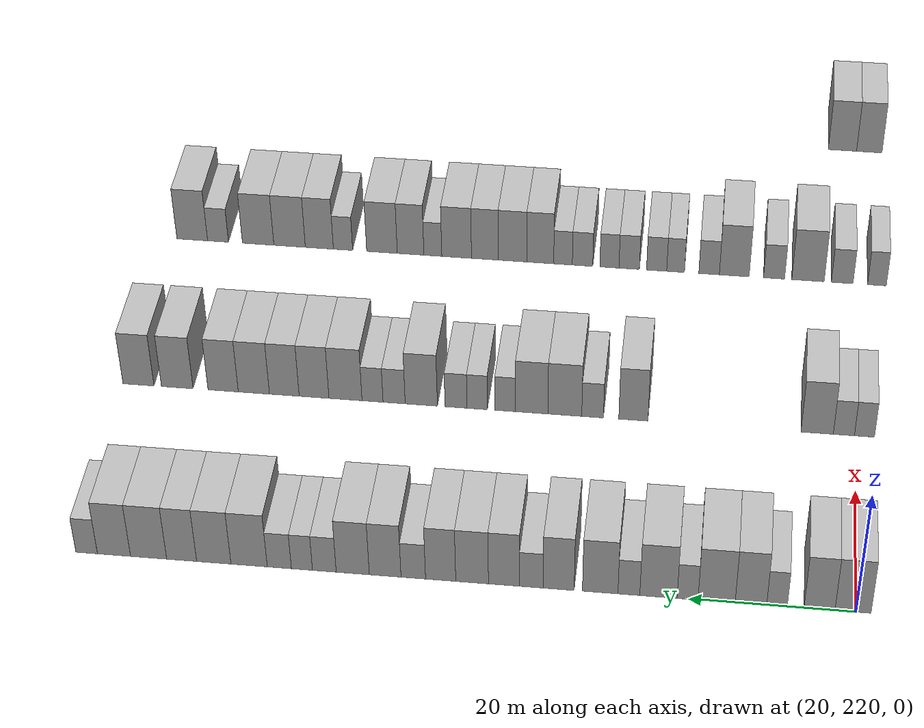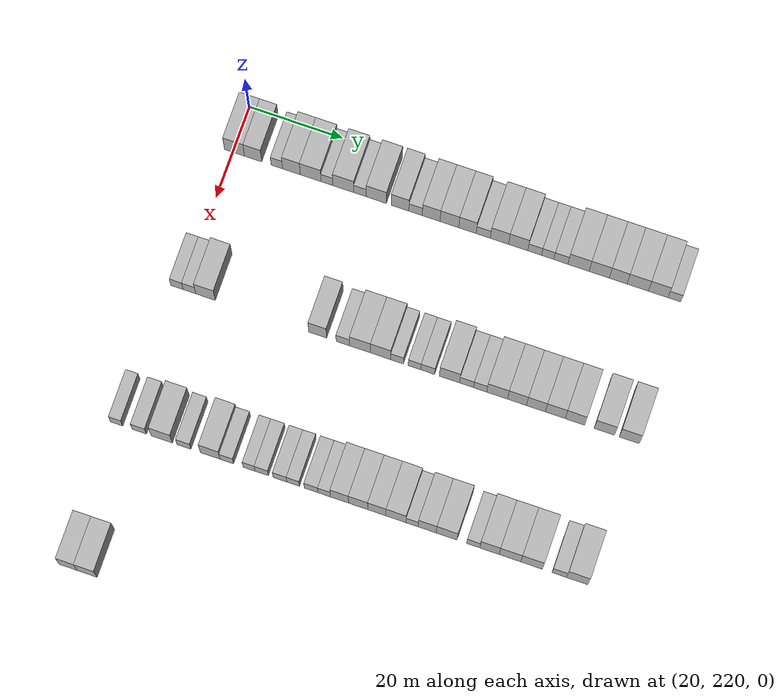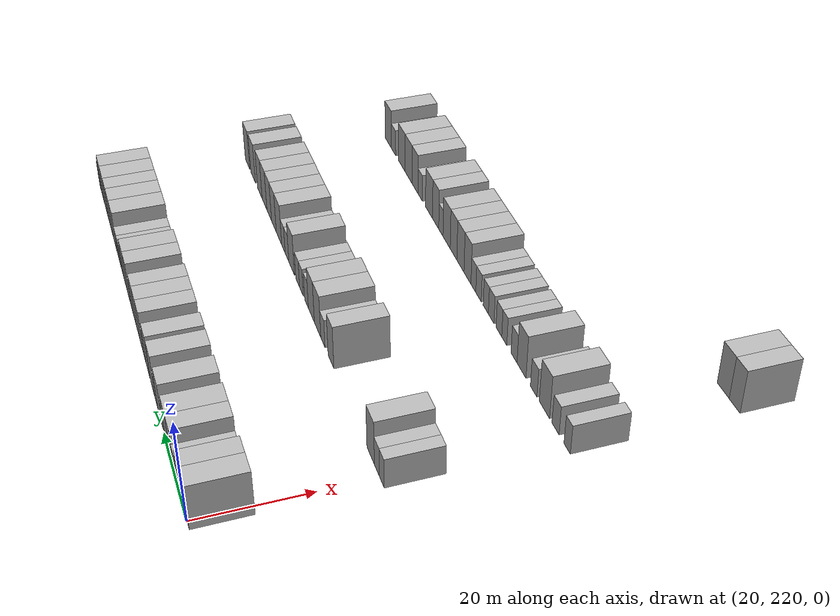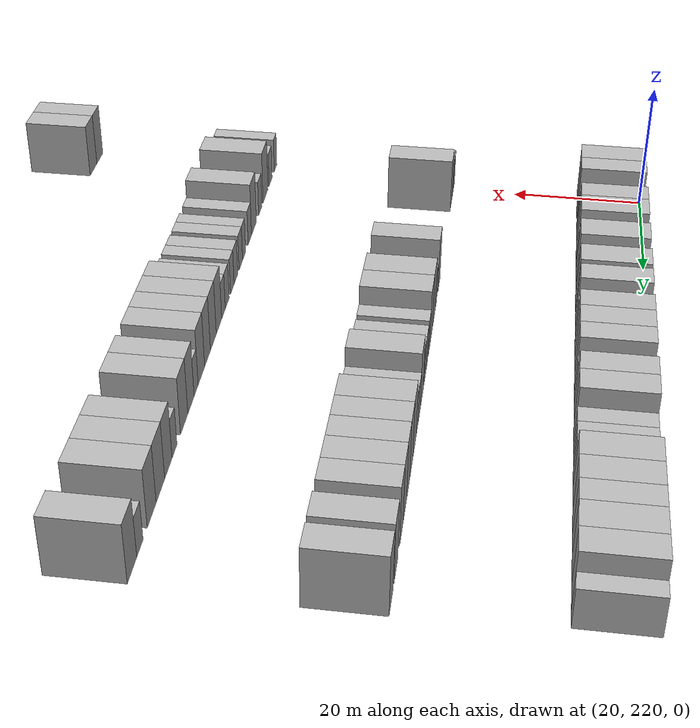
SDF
<sdf version="1.6">
 <world name="default">
  <model name="building_171">
   <static>1</static>
   <pose>25.0000 220.3813 0 0.000000 0.000000 0.000000</pose>
   <link name="link">
    <pose>0 0 4.50 0 0 0</pose>
    <collision name="collision"><geometry><box><size>10.0000 4.2788 9.0000</size></box></geometry></collision>
    <visual name="visual">
     <cast_shadows>0</cast_shadows>
     <geometry><box><size>10.0000 4.2788 9.0000</size></box></geometry>
     <material>
      <script>
       <uri>model://HANNAS_wall/materials/scripts</uri>
       <uri>model://HANNAS_wall/materials/textures</uri>
       <name>vrc/HANNAS_wall</name>
      </script>
     </material>
    </visual>
   </link>
  </model>
  <model name="building_172">
   <static>1</static>
   <pose>25.0000 224.3634 0 0.000000 0.000000 0.000000</pose>
   <link name="link">
    <pose>0 0 4.50 0 0 0</pose>
    <collision name="collision"><geometry><box><size>10.0000 3.6854 9.0000</size></box></geometry></collision>
    <visual name="visual">
     <cast_shadows>0</cast_shadows>
     <geometry><box><size>10.0000 3.6854 9.0000</size></box></geometry>
     <material>
      <script>
       <uri>model://HANNAS_wall/materials/scripts</uri>
       <uri>model://HANNAS_wall/materials/textures</uri>
       <name>vrc/HANNAS_wall</name>
      </script>
     </material>
    </visual>
   </link>
  </model>
  <model name="building_173">
   <static>1</static>
   <pose>25.0000 229.4312 0 0.000000 0.000000 0.000000</pose>
   <link name="link">
    <pose>0 0 3.00 0 0 0</pose>
    <collision name="collision"><geometry><box><size>10.0000 2.4502 6.0000</size></box></geometry></collision>
    <visual name="visual">
     <cast_shadows>0</cast_shadows>
     <geometry><box><size>10.0000 2.4502 6.0000</size></box></geometry>
     <material>
      <script>
       <uri>model://HANNAS_wall/materials/scripts</uri>
       <uri>model://HANNAS_wall/materials/textures</uri>
       <name>vrc/HANNAS_wall</name>
      </script>
     </material>
    </visual>
   </link>
  </model>
  <model name="building_174">
   <static>1</static>
   <pose>25.0000 232.5444 0 0.000000 0.000000 0.000000</pose>
   <link name="link">
    <pose>0 0 4.50 0 0 0</pose>
    <collision name="collision"><geometry><box><size>10.0000 3.7763 9.0000</size></box></geometry></collision>
    <visual name="visual">
     <cast_shadows>0</cast_shadows>
     <geometry><box><size>10.0000 3.7763 9.0000</size></box></geometry>
     <material>
      <script>
       <uri>model://HANNAS_wall/materials/scripts</uri>
       <uri>model://HANNAS_wall/materials/textures</uri>
       <name>vrc/HANNAS_wall</name>
      </script>
     </material>
    </visual>
   </link>
  </model>
  <model name="building_175">
   <static>1</static>
   <pose>25.0000 236.6588 0 0.000000 0.000000 0.000000</pose>
   <link name="link">
    <pose>0 0 4.50 0 0 0</pose>
    <collision name="collision"><geometry><box><size>10.0000 4.4524 9.0000</size></box></geometry></collision>
    <visual name="visual">
     <cast_shadows>0</cast_shadows>
     <geometry><box><size>10.0000 4.4524 9.0000</size></box></geometry>
     <material>
      <script>
       <uri>model://HANNAS_wall/materials/scripts</uri>
       <uri>model://HANNAS_wall/materials/textures</uri>
       <name>vrc/HANNAS_wall</name>
      </script>
     </material>
    </visual>
   </link>
  </model>
  <model name="building_176">
   <static>1</static>
   <pose>25.0000 240.1410 0 0.000000 0.000000 0.000000</pose>
   <link name="link">
    <pose>0 0 3.00 0 0 0</pose>
    <collision name="collision"><geometry><box><size>10.0000 2.5120 6.0000</size></box></geometry></collision>
    <visual name="visual">
     <cast_shadows>0</cast_shadows>
     <geometry><box><size>10.0000 2.5120 6.0000</size></box></geometry>
     <material>
      <script>
       <uri>model://HANNAS_wall/materials/scripts</uri>
       <uri>model://HANNAS_wall/materials/textures</uri>
       <name>vrc/HANNAS_wall</name>
      </script>
     </material>
    </visual>
   </link>
  </model>
  <model name="building_177">
   <static>1</static>
   <pose>25.0000 243.6367 0 0.000000 0.000000 0.000000</pose>
   <link name="link">
    <pose>0 0 4.50 0 0 0</pose>
    <collision name="collision"><geometry><box><size>10.0000 4.4793 9.0000</size></box></geometry></collision>
    <visual name="visual">
     <cast_shadows>0</cast_shadows>
     <geometry><box><size>10.0000 4.4793 9.0000</size></box></geometry>
     <material>
      <script>
       <uri>model://HANNAS_wall/materials/scripts</uri>
       <uri>model://HANNAS_wall/materials/textures</uri>
       <name>vrc/HANNAS_wall</name>
      </script>
     </material>
    </visual>
   </link>
  </model>
  <model name="building_178">
   <static>1</static>
   <pose>25.0000 247.1962 0 0.000000 0.000000 0.000000</pose>
   <link name="link">
    <pose>0 0 3.00 0 0 0</pose>
    <collision name="collision"><geometry><box><size>10.0000 2.6397 6.0000</size></box></geometry></collision>
    <visual name="visual">
     <cast_shadows>0</cast_shadows>
     <geometry><box><size>10.0000 2.6397 6.0000</size></box></geometry>
     <material>
      <script>
       <uri>model://HANNAS_wall/materials/scripts</uri>
       <uri>model://HANNAS_wall/materials/textures</uri>
       <name>vrc/HANNAS_wall</name>
      </script>
     </material>
    </visual>
   </link>
  </model>
  <model name="building_179">
   <static>1</static>
   <pose>25.0000 250.6557 0 0.000000 0.000000 0.000000</pose>
   <link name="link">
    <pose>0 0 4.50 0 0 0</pose>
    <collision name="collision"><geometry><box><size>10.0000 4.2793 9.0000</size></box></geometry></collision>
    <visual name="visual">
     <cast_shadows>0</cast_shadows>
     <geometry><box><size>10.0000 4.2793 9.0000</size></box></geometry>
     <material>
      <script>
       <uri>model://HANNAS_wall/materials/scripts</uri>
       <uri>model://HANNAS_wall/materials/textures</uri>
       <name>vrc/HANNAS_wall</name>
      </script>
     </material>
    </visual>
   </link>
  </model>
  <model name="building_180">
   <static>1</static>
   <pose>25.0000 255.6756 0 0.000000 0.000000 0.000000</pose>
   <link name="link">
    <pose>0 0 4.50 0 0 0</pose>
    <collision name="collision"><geometry><box><size>10.0000 3.7605 9.0000</size></box></geometry></collision>
    <visual name="visual">
     <cast_shadows>0</cast_shadows>
     <geometry><box><size>10.0000 3.7605 9.0000</size></box></geometry>
     <material>
      <script>
       <uri>model://HANNAS_wall/materials/scripts</uri>
       <uri>model://HANNAS_wall/materials/textures</uri>
       <name>vrc/HANNAS_wall</name>
      </script>
     </material>
    </visual>
   </link>
  </model>
  <model name="building_181">
   <static>1</static>
   <pose>25.0000 258.9836 0 0.000000 0.000000 0.000000</pose>
   <link name="link">
    <pose>0 0 3.00 0 0 0</pose>
    <collision name="collision"><geometry><box><size>10.0000 2.8555 6.0000</size></box></geometry></collision>
    <visual name="visual">
     <cast_shadows>0</cast_shadows>
     <geometry><box><size>10.0000 2.8555 6.0000</size></box></geometry>
     <material>
      <script>
       <uri>model://HANNAS_wall/materials/scripts</uri>
       <uri>model://HANNAS_wall/materials/textures</uri>
       <name>vrc/HANNAS_wall</name>
      </script>
     </material>
    </visual>
   </link>
  </model>
  <model name="building_182">
   <static>1</static>
   <pose>25.0000 262.2983 0 0.000000 0.000000 0.000000</pose>
   <link name="link">
    <pose>0 0 4.50 0 0 0</pose>
    <collision name="collision"><geometry><box><size>10.0000 3.7739 9.0000</size></box></geometry></collision>
    <visual name="visual">
     <cast_shadows>0</cast_shadows>
     <geometry><box><size>10.0000 3.7739 9.0000</size></box></geometry>
     <material>
      <script>
       <uri>model://HANNAS_wall/materials/scripts</uri>
       <uri>model://HANNAS_wall/materials/textures</uri>
       <name>vrc/HANNAS_wall</name>
      </script>
     </material>
    </visual>
   </link>
  </model>
  <model name="building_183">
   <static>1</static>
   <pose>25.0000 266.1753 0 0.000000 0.000000 0.000000</pose>
   <link name="link">
    <pose>0 0 4.50 0 0 0</pose>
    <collision name="collision"><geometry><box><size>10.0000 3.9802 9.0000</size></box></geometry></collision>
    <visual name="visual">
     <cast_shadows>0</cast_shadows>
     <geometry><box><size>10.0000 3.9802 9.0000</size></box></geometry>
     <material>
      <script>
       <uri>model://HANNAS_wall/materials/scripts</uri>
       <uri>model://HANNAS_wall/materials/textures</uri>
       <name>vrc/HANNAS_wall</name>
      </script>
     </material>
    </visual>
   </link>
  </model>
  <model name="building_184">
   <static>1</static>
   <pose>25.0000 270.0059 0 0.000000 0.000000 0.000000</pose>
   <link name="link">
    <pose>0 0 4.50 0 0 0</pose>
    <collision name="collision"><geometry><box><size>10.0000 3.6809 9.0000</size></box></geometry></collision>
    <visual name="visual">
     <cast_shadows>0</cast_shadows>
     <geometry><box><size>10.0000 3.6809 9.0000</size></box></geometry>
     <material>
      <script>
       <uri>model://HANNAS_wall/materials/scripts</uri>
       <uri>model://HANNAS_wall/materials/textures</uri>
       <name>vrc/HANNAS_wall</name>
      </script>
     </material>
    </visual>
   </link>
  </model>
  <model name="building_185">
   <static>1</static>
   <pose>25.0000 273.3457 0 0.000000 0.000000 0.000000</pose>
   <link name="link">
    <pose>0 0 3.00 0 0 0</pose>
    <collision name="collision"><geometry><box><size>10.0000 2.9987 6.0000</size></box></geometry></collision>
    <visual name="visual">
     <cast_shadows>0</cast_shadows>
     <geometry><box><size>10.0000 2.9987 6.0000</size></box></geometry>
     <material>
      <script>
       <uri>model://HANNAS_wall/materials/scripts</uri>
       <uri>model://HANNAS_wall/materials/textures</uri>
       <name>vrc/HANNAS_wall</name>
      </script>
     </material>
    </visual>
   </link>
  </model>
  <model name="building_186">
   <static>1</static>
   <pose>25.0000 276.7845 0 0.000000 0.000000 0.000000</pose>
   <link name="link">
    <pose>0 0 4.50 0 0 0</pose>
    <collision name="collision"><geometry><box><size>10.0000 3.8788 9.0000</size></box></geometry></collision>
    <visual name="visual">
     <cast_shadows>0</cast_shadows>
     <geometry><box><size>10.0000 3.8788 9.0000</size></box></geometry>
     <material>
      <script>
       <uri>model://HANNAS_wall/materials/scripts</uri>
       <uri>model://HANNAS_wall/materials/textures</uri>
       <name>vrc/HANNAS_wall</name>
      </script>
     </material>
    </visual>
   </link>
  </model>
  <model name="building_187">
   <static>1</static>
   <pose>25.0000 280.7556 0 0.000000 0.000000 0.000000</pose>
   <link name="link">
    <pose>0 0 4.50 0 0 0</pose>
    <collision name="collision"><geometry><box><size>10.0000 4.0634 9.0000</size></box></geometry></collision>
    <visual name="visual">
     <cast_shadows>0</cast_shadows>
     <geometry><box><size>10.0000 4.0634 9.0000</size></box></geometry>
     <material>
      <script>
       <uri>model://HANNAS_wall/materials/scripts</uri>
       <uri>model://HANNAS_wall/materials/textures</uri>
       <name>vrc/HANNAS_wall</name>
      </script>
     </material>
    </visual>
   </link>
  </model>
  <model name="building_188">
   <static>1</static>
   <pose>25.0000 284.2451 0 0.000000 0.000000 0.000000</pose>
   <link name="link">
    <pose>0 0 3.00 0 0 0</pose>
    <collision name="collision"><geometry><box><size>10.0000 2.9156 6.0000</size></box></geometry></collision>
    <visual name="visual">
     <cast_shadows>0</cast_shadows>
     <geometry><box><size>10.0000 2.9156 6.0000</size></box></geometry>
     <material>
      <script>
       <uri>model://HANNAS_wall/materials/scripts</uri>
       <uri>model://HANNAS_wall/materials/textures</uri>
       <name>vrc/HANNAS_wall</name>
      </script>
     </material>
    </visual>
   </link>
  </model>
  <model name="building_189">
   <static>1</static>
   <pose>25.0000 287.0000 0 0.000000 0.000000 0.000000</pose>
   <link name="link">
    <pose>0 0 3.00 0 0 0</pose>
    <collision name="collision"><geometry><box><size>10.0000 2.5942 6.0000</size></box></geometry></collision>
    <visual name="visual">
     <cast_shadows>0</cast_shadows>
     <geometry><box><size>10.0000 2.5942 6.0000</size></box></geometry>
     <material>
      <script>
       <uri>model://HANNAS_wall/materials/scripts</uri>
       <uri>model://HANNAS_wall/materials/textures</uri>
       <name>vrc/HANNAS_wall</name>
      </script>
     </material>
    </visual>
   </link>
  </model>
  <model name="building_190">
   <static>1</static>
   <pose>25.0000 289.7830 0 0.000000 0.000000 0.000000</pose>
   <link name="link">
    <pose>0 0 3.00 0 0 0</pose>
    <collision name="collision"><geometry><box><size>10.0000 2.9718 6.0000</size></box></geometry></collision>
    <visual name="visual">
     <cast_shadows>0</cast_shadows>
     <geometry><box><size>10.0000 2.9718 6.0000</size></box></geometry>
     <material>
      <script>
       <uri>model://HANNAS_wall/materials/scripts</uri>
       <uri>model://HANNAS_wall/materials/textures</uri>
       <name>vrc/HANNAS_wall</name>
      </script>
     </material>
    </visual>
   </link>
  </model>
  <model name="building_191">
   <static>1</static>
   <pose>25.0000 293.5099 0 0.000000 0.000000 0.000000</pose>
   <link name="link">
    <pose>0 0 4.50 0 0 0</pose>
    <collision name="collision"><geometry><box><size>10.0000 4.4820 9.0000</size></box></geometry></collision>
    <visual name="visual">
     <cast_shadows>0</cast_shadows>
     <geometry><box><size>10.0000 4.4820 9.0000</size></box></geometry>
     <material>
      <script>
       <uri>model://HANNAS_wall/materials/scripts</uri>
       <uri>model://HANNAS_wall/materials/textures</uri>
       <name>vrc/HANNAS_wall</name>
      </script>
     </material>
    </visual>
   </link>
  </model>
  <model name="building_192">
   <static>1</static>
   <pose>25.0000 297.8731 0 0.000000 0.000000 0.000000</pose>
   <link name="link">
    <pose>0 0 4.50 0 0 0</pose>
    <collision name="collision"><geometry><box><size>10.0000 4.2445 9.0000</size></box></geometry></collision>
    <visual name="visual">
     <cast_shadows>0</cast_shadows>
     <geometry><box><size>10.0000 4.2445 9.0000</size></box></geometry>
     <material>
      <script>
       <uri>model://HANNAS_wall/materials/scripts</uri>
       <uri>model://HANNAS_wall/materials/textures</uri>
       <name>vrc/HANNAS_wall</name>
      </script>
     </material>
    </visual>
   </link>
  </model>
  <model name="building_193">
   <static>1</static>
   <pose>25.0000 301.8572 0 0.000000 0.000000 0.000000</pose>
   <link name="link">
    <pose>0 0 4.50 0 0 0</pose>
    <collision name="collision"><geometry><box><size>10.0000 3.7237 9.0000</size></box></geometry></collision>
    <visual name="visual">
     <cast_shadows>0</cast_shadows>
     <geometry><box><size>10.0000 3.7237 9.0000</size></box></geometry>
     <material>
      <script>
       <uri>model://HANNAS_wall/materials/scripts</uri>
       <uri>model://HANNAS_wall/materials/textures</uri>
       <name>vrc/HANNAS_wall</name>
      </script>
     </material>
    </visual>
   </link>
  </model>
  <model name="building_194">
   <static>1</static>
   <pose>25.0000 305.9641 0 0.000000 0.000000 0.000000</pose>
   <link name="link">
    <pose>0 0 4.50 0 0 0</pose>
    <collision name="collision"><geometry><box><size>10.0000 4.4899 9.0000</size></box></geometry></collision>
    <visual name="visual">
     <cast_shadows>0</cast_shadows>
     <geometry><box><size>10.0000 4.4899 9.0000</size></box></geometry>
     <material>
      <script>
       <uri>model://HANNAS_wall/materials/scripts</uri>
       <uri>model://HANNAS_wall/materials/textures</uri>
       <name>vrc/HANNAS_wall</name>
      </script>
     </material>
    </visual>
   </link>
  </model>
  <model name="building_195">
   <static>1</static>
   <pose>25.0000 310.2711 0 0.000000 0.000000 0.000000</pose>
   <link name="link">
    <pose>0 0 4.50 0 0 0</pose>
    <collision name="collision"><geometry><box><size>10.0000 4.1242 9.0000</size></box></geometry></collision>
    <visual name="visual">
     <cast_shadows>0</cast_shadows>
     <geometry><box><size>10.0000 4.1242 9.0000</size></box></geometry>
     <material>
      <script>
       <uri>model://HANNAS_wall/materials/scripts</uri>
       <uri>model://HANNAS_wall/materials/textures</uri>
       <name>vrc/HANNAS_wall</name>
      </script>
     </material>
    </visual>
   </link>
  </model>
  <model name="building_196">
   <static>1</static>
   <pose>25.0000 313.6784 0 0.000000 0.000000 0.000000</pose>
   <link name="link">
    <pose>0 0 3.00 0 0 0</pose>
    <collision name="collision"><geometry><box><size>10.0000 2.6902 6.0000</size></box></geometry></collision>
    <visual name="visual">
     <cast_shadows>0</cast_shadows>
     <geometry><box><size>10.0000 2.6902 6.0000</size></box></geometry>
     <material>
      <script>
       <uri>model://HANNAS_wall/materials/scripts</uri>
       <uri>model://HANNAS_wall/materials/textures</uri>
       <name>vrc/HANNAS_wall</name>
      </script>
     </material>
    </visual>
   </link>
  </model>
  <model name="building_410">
   <static>1</static>
   <pose>55.0000 218.8072 0 0.000000 0.000000 0.000000</pose>
   <link name="link">
    <pose>0 0 3.00 0 0 0</pose>
    <collision name="collision"><geometry><box><size>10.0000 2.5646 6.0000</size></box></geometry></collision>
    <visual name="visual">
     <cast_shadows>0</cast_shadows>
     <geometry><box><size>10.0000 2.5646 6.0000</size></box></geometry>
     <material>
      <script>
       <uri>model://HANNAS_wall/materials/scripts</uri>
       <uri>model://HANNAS_wall/materials/textures</uri>
       <name>vrc/HANNAS_wall</name>
      </script>
     </material>
    </visual>
   </link>
  </model>
  <model name="building_411">
   <static>1</static>
   <pose>55.0000 221.4425 0 0.000000 0.000000 0.000000</pose>
   <link name="link">
    <pose>0 0 3.00 0 0 0</pose>
    <collision name="collision"><geometry><box><size>10.0000 2.7061 6.0000</size></box></geometry></collision>
    <visual name="visual">
     <cast_shadows>0</cast_shadows>
     <geometry><box><size>10.0000 2.7061 6.0000</size></box></geometry>
     <material>
      <script>
       <uri>model://HANNAS_wall/materials/scripts</uri>
       <uri>model://HANNAS_wall/materials/textures</uri>
       <name>vrc/HANNAS_wall</name>
      </script>
     </material>
    </visual>
   </link>
  </model>
  <model name="building_412">
   <static>1</static>
   <pose>55.0000 224.8716 0 0.000000 0.000000 0.000000</pose>
   <link name="link">
    <pose>0 0 4.50 0 0 0</pose>
    <collision name="collision"><geometry><box><size>10.0000 4.1520 9.0000</size></box></geometry></collision>
    <visual name="visual">
     <cast_shadows>0</cast_shadows>
     <geometry><box><size>10.0000 4.1520 9.0000</size></box></geometry>
     <material>
      <script>
       <uri>model://HANNAS_wall/materials/scripts</uri>
       <uri>model://HANNAS_wall/materials/textures</uri>
       <name>vrc/HANNAS_wall</name>
      </script>
     </material>
    </visual>
   </link>
  </model>
  <model name="building_413">
   <static>1</static>
   <pose>55.0000 248.6292 0 0.000000 0.000000 0.000000</pose>
   <link name="link">
    <pose>0 0 4.50 0 0 0</pose>
    <collision name="collision"><geometry><box><size>10.0000 3.7877 9.0000</size></box></geometry></collision>
    <visual name="visual">
     <cast_shadows>0</cast_shadows>
     <geometry><box><size>10.0000 3.7877 9.0000</size></box></geometry>
     <material>
      <script>
       <uri>model://HANNAS_wall/materials/scripts</uri>
       <uri>model://HANNAS_wall/materials/textures</uri>
       <name>vrc/HANNAS_wall</name>
      </script>
     </material>
    </visual>
   </link>
  </model>
  <model name="building_414">
   <static>1</static>
   <pose>55.0000 253.9353 0 0.000000 0.000000 0.000000</pose>
   <link name="link">
    <pose>0 0 3.00 0 0 0</pose>
    <collision name="collision"><geometry><box><size>10.0000 2.8244 6.0000</size></box></geometry></collision>
    <visual name="visual">
     <cast_shadows>0</cast_shadows>
     <geometry><box><size>10.0000 2.8244 6.0000</size></box></geometry>
     <material>
      <script>
       <uri>model://HANNAS_wall/materials/scripts</uri>
       <uri>model://HANNAS_wall/materials/textures</uri>
       <name>vrc/HANNAS_wall</name>
      </script>
     </material>
    </visual>
   </link>
  </model>
  <model name="building_415">
   <static>1</static>
   <pose>55.0000 257.5524 0 0.000000 0.000000 0.000000</pose>
   <link name="link">
    <pose>0 0 4.50 0 0 0</pose>
    <collision name="collision"><geometry><box><size>10.0000 4.4098 9.0000</size></box></geometry></collision>
    <visual name="visual">
     <cast_shadows>0</cast_shadows>
     <geometry><box><size>10.0000 4.4098 9.0000</size></box></geometry>
     <material>
      <script>
       <uri>model://HANNAS_wall/materials/scripts</uri>
       <uri>model://HANNAS_wall/materials/textures</uri>
       <name>vrc/HANNAS_wall</name>
      </script>
     </material>
    </visual>
   </link>
  </model>
  <model name="building_416">
   <static>1</static>
   <pose>55.0000 261.8807 0 0.000000 0.000000 0.000000</pose>
   <link name="link">
    <pose>0 0 4.50 0 0 0</pose>
    <collision name="collision"><geometry><box><size>10.0000 4.2467 9.0000</size></box></geometry></collision>
    <visual name="visual">
     <cast_shadows>0</cast_shadows>
     <geometry><box><size>10.0000 4.2467 9.0000</size></box></geometry>
     <material>
      <script>
       <uri>model://HANNAS_wall/materials/scripts</uri>
       <uri>model://HANNAS_wall/materials/textures</uri>
       <name>vrc/HANNAS_wall</name>
      </script>
     </material>
    </visual>
   </link>
  </model>
  <model name="building_417">
   <static>1</static>
   <pose>55.0000 265.3498 0 0.000000 0.000000 0.000000</pose>
   <link name="link">
    <pose>0 0 3.00 0 0 0</pose>
    <collision name="collision"><geometry><box><size>10.0000 2.6917 6.0000</size></box></geometry></collision>
    <visual name="visual">
     <cast_shadows>0</cast_shadows>
     <geometry><box><size>10.0000 2.6917 6.0000</size></box></geometry>
     <material>
      <script>
       <uri>model://HANNAS_wall/materials/scripts</uri>
       <uri>model://HANNAS_wall/materials/textures</uri>
       <name>vrc/HANNAS_wall</name>
      </script>
     </material>
    </visual>
   </link>
  </model>
  <model name="building_418">
   <static>1</static>
   <pose>55.0000 269.0288 0 0.000000 0.000000 0.000000</pose>
   <link name="link">
    <pose>0 0 3.00 0 0 0</pose>
    <collision name="collision"><geometry><box><size>10.0000 2.6662 6.0000</size></box></geometry></collision>
    <visual name="visual">
     <cast_shadows>0</cast_shadows>
     <geometry><box><size>10.0000 2.6662 6.0000</size></box></geometry>
     <material>
      <script>
       <uri>model://HANNAS_wall/materials/scripts</uri>
       <uri>model://HANNAS_wall/materials/textures</uri>
       <name>vrc/HANNAS_wall</name>
      </script>
     </material>
    </visual>
   </link>
  </model>
  <model name="building_419">
   <static>1</static>
   <pose>55.0000 271.8092 0 0.000000 0.000000 0.000000</pose>
   <link name="link">
    <pose>0 0 3.00 0 0 0</pose>
    <collision name="collision"><geometry><box><size>10.0000 2.8946 6.0000</size></box></geometry></collision>
    <visual name="visual">
     <cast_shadows>0</cast_shadows>
     <geometry><box><size>10.0000 2.8946 6.0000</size></box></geometry>
     <material>
      <script>
       <uri>model://HANNAS_wall/materials/scripts</uri>
       <uri>model://HANNAS_wall/materials/textures</uri>
       <name>vrc/HANNAS_wall</name>
      </script>
     </material>
    </visual>
   </link>
  </model>
  <model name="building_420">
   <static>1</static>
   <pose>55.0000 276.3805 0 0.000000 0.000000 0.000000</pose>
   <link name="link">
    <pose>0 0 4.50 0 0 0</pose>
    <collision name="collision"><geometry><box><size>10.0000 4.2480 9.0000</size></box></geometry></collision>
    <visual name="visual">
     <cast_shadows>0</cast_shadows>
     <geometry><box><size>10.0000 4.2480 9.0000</size></box></geometry>
     <material>
      <script>
       <uri>model://HANNAS_wall/materials/scripts</uri>
       <uri>model://HANNAS_wall/materials/textures</uri>
       <name>vrc/HANNAS_wall</name>
      </script>
     </material>
    </visual>
   </link>
  </model>
  <model name="building_421">
   <static>1</static>
   <pose>55.0000 279.9682 0 0.000000 0.000000 0.000000</pose>
   <link name="link">
    <pose>0 0 3.00 0 0 0</pose>
    <collision name="collision"><geometry><box><size>10.0000 2.9276 6.0000</size></box></geometry></collision>
    <visual name="visual">
     <cast_shadows>0</cast_shadows>
     <geometry><box><size>10.0000 2.9276 6.0000</size></box></geometry>
     <material>
      <script>
       <uri>model://HANNAS_wall/materials/scripts</uri>
       <uri>model://HANNAS_wall/materials/textures</uri>
       <name>vrc/HANNAS_wall</name>
      </script>
     </material>
    </visual>
   </link>
  </model>
  <model name="building_422">
   <static>1</static>
   <pose>55.0000 282.8209 0 0.000000 0.000000 0.000000</pose>
   <link name="link">
    <pose>0 0 3.00 0 0 0</pose>
    <collision name="collision"><geometry><box><size>10.0000 2.7777 6.0000</size></box></geometry></collision>
    <visual name="visual">
     <cast_shadows>0</cast_shadows>
     <geometry><box><size>10.0000 2.7777 6.0000</size></box></geometry>
     <material>
      <script>
       <uri>model://HANNAS_wall/materials/scripts</uri>
       <uri>model://HANNAS_wall/materials/textures</uri>
       <name>vrc/HANNAS_wall</name>
      </script>
     </material>
    </visual>
   </link>
  </model>
  <model name="building_423">
   <static>1</static>
   <pose>55.0000 286.3992 0 0.000000 0.000000 0.000000</pose>
   <link name="link">
    <pose>0 0 4.50 0 0 0</pose>
    <collision name="collision"><geometry><box><size>10.0000 4.3789 9.0000</size></box></geometry></collision>
    <visual name="visual">
     <cast_shadows>0</cast_shadows>
     <geometry><box><size>10.0000 4.3789 9.0000</size></box></geometry>
     <material>
      <script>
       <uri>model://HANNAS_wall/materials/scripts</uri>
       <uri>model://HANNAS_wall/materials/textures</uri>
       <name>vrc/HANNAS_wall</name>
      </script>
     </material>
    </visual>
   </link>
  </model>
  <model name="building_424">
   <static>1</static>
   <pose>55.0000 290.5668 0 0.000000 0.000000 0.000000</pose>
   <link name="link">
    <pose>0 0 4.50 0 0 0</pose>
    <collision name="collision"><geometry><box><size>10.0000 3.9563 9.0000</size></box></geometry></collision>
    <visual name="visual">
     <cast_shadows>0</cast_shadows>
     <geometry><box><size>10.0000 3.9563 9.0000</size></box></geometry>
     <material>
      <script>
       <uri>model://HANNAS_wall/materials/scripts</uri>
       <uri>model://HANNAS_wall/materials/textures</uri>
       <name>vrc/HANNAS_wall</name>
      </script>
     </material>
    </visual>
   </link>
  </model>
  <model name="building_425">
   <static>1</static>
   <pose>55.0000 294.5223 0 0.000000 0.000000 0.000000</pose>
   <link name="link">
    <pose>0 0 4.50 0 0 0</pose>
    <collision name="collision"><geometry><box><size>10.0000 3.9548 9.0000</size></box></geometry></collision>
    <visual name="visual">
     <cast_shadows>0</cast_shadows>
     <geometry><box><size>10.0000 3.9548 9.0000</size></box></geometry>
     <material>
      <script>
       <uri>model://HANNAS_wall/materials/scripts</uri>
       <uri>model://HANNAS_wall/materials/textures</uri>
       <name>vrc/HANNAS_wall</name>
      </script>
     </material>
    </visual>
   </link>
  </model>
  <model name="building_426">
   <static>1</static>
   <pose>55.0000 298.5744 0 0.000000 0.000000 0.000000</pose>
   <link name="link">
    <pose>0 0 4.50 0 0 0</pose>
    <collision name="collision"><geometry><box><size>10.0000 4.1494 9.0000</size></box></geometry></collision>
    <visual name="visual">
     <cast_shadows>0</cast_shadows>
     <geometry><box><size>10.0000 4.1494 9.0000</size></box></geometry>
     <material>
      <script>
       <uri>model://HANNAS_wall/materials/scripts</uri>
       <uri>model://HANNAS_wall/materials/textures</uri>
       <name>vrc/HANNAS_wall</name>
      </script>
     </material>
    </visual>
   </link>
  </model>
  <model name="building_427">
   <static>1</static>
   <pose>55.0000 302.6689 0 0.000000 0.000000 0.000000</pose>
   <link name="link">
    <pose>0 0 4.50 0 0 0</pose>
    <collision name="collision"><geometry><box><size>10.0000 4.0394 9.0000</size></box></geometry></collision>
    <visual name="visual">
     <cast_shadows>0</cast_shadows>
     <geometry><box><size>10.0000 4.0394 9.0000</size></box></geometry>
     <material>
      <script>
       <uri>model://HANNAS_wall/materials/scripts</uri>
       <uri>model://HANNAS_wall/materials/textures</uri>
       <name>vrc/HANNAS_wall</name>
      </script>
     </material>
    </visual>
   </link>
  </model>
  <model name="building_428">
   <static>1</static>
   <pose>55.0000 308.8072 0 0.000000 0.000000 0.000000</pose>
   <link name="link">
    <pose>0 0 4.50 0 0 0</pose>
    <collision name="collision"><geometry><box><size>10.0000 4.2372 9.0000</size></box></geometry></collision>
    <visual name="visual">
     <cast_shadows>0</cast_shadows>
     <geometry><box><size>10.0000 4.2372 9.0000</size></box></geometry>
     <material>
      <script>
       <uri>model://HANNAS_wall/materials/scripts</uri>
       <uri>model://HANNAS_wall/materials/textures</uri>
       <name>vrc/HANNAS_wall</name>
      </script>
     </material>
    </visual>
   </link>
  </model>
  <model name="building_429">
   <static>1</static>
   <pose>55.0000 314.0043 0 0.000000 0.000000 0.000000</pose>
   <link name="link">
    <pose>0 0 4.50 0 0 0</pose>
    <collision name="collision"><geometry><box><size>10.0000 4.1571 9.0000</size></box></geometry></collision>
    <visual name="visual">
     <cast_shadows>0</cast_shadows>
     <geometry><box><size>10.0000 4.1571 9.0000</size></box></geometry>
     <material>
      <script>
       <uri>model://HANNAS_wall/materials/scripts</uri>
       <uri>model://HANNAS_wall/materials/textures</uri>
       <name>vrc/HANNAS_wall</name>
      </script>
     </material>
    </visual>
   </link>
  </model>
  <model name="building_632">
   <static>1</static>
   <pose>85.0000 216.8720 0 0.000000 0.000000 0.000000</pose>
   <link name="link">
    <pose>0 0 3.00 0 0 0</pose>
    <collision name="collision"><geometry><box><size>10.0000 2.5731 6.0000</size></box></geometry></collision>
    <visual name="visual">
     <cast_shadows>0</cast_shadows>
     <geometry><box><size>10.0000 2.5731 6.0000</size></box></geometry>
     <material>
      <script>
       <uri>model://HANNAS_wall/materials/scripts</uri>
       <uri>model://HANNAS_wall/materials/textures</uri>
       <name>vrc/HANNAS_wall</name>
      </script>
     </material>
    </visual>
   </link>
  </model>
  <model name="building_633">
   <static>1</static>
   <pose>85.0000 221.6484 0 0.000000 0.000000 0.000000</pose>
   <link name="link">
    <pose>0 0 3.00 0 0 0</pose>
    <collision name="collision"><geometry><box><size>10.0000 2.9796 6.0000</size></box></geometry></collision>
    <visual name="visual">
     <cast_shadows>0</cast_shadows>
     <geometry><box><size>10.0000 2.9796 6.0000</size></box></geometry>
     <material>
      <script>
       <uri>model://HANNAS_wall/materials/scripts</uri>
       <uri>model://HANNAS_wall/materials/textures</uri>
       <name>vrc/HANNAS_wall</name>
      </script>
     </material>
    </visual>
   </link>
  </model>
  <model name="building_634">
   <static>1</static>
   <pose>85.0000 226.3697 0 0.000000 0.000000 0.000000</pose>
   <link name="link">
    <pose>0 0 4.50 0 0 0</pose>
    <collision name="collision"><geometry><box><size>10.0000 4.4631 9.0000</size></box></geometry></collision>
    <visual name="visual">
     <cast_shadows>0</cast_shadows>
     <geometry><box><size>10.0000 4.4631 9.0000</size></box></geometry>
     <material>
      <script>
       <uri>model://HANNAS_wall/materials/scripts</uri>
       <uri>model://HANNAS_wall/materials/textures</uri>
       <name>vrc/HANNAS_wall</name>
      </script>
     </material>
    </visual>
   </link>
  </model>
  <model name="building_635">
   <static>1</static>
   <pose>85.0000 231.0549 0 0.000000 0.000000 0.000000</pose>
   <link name="link">
    <pose>0 0 3.00 0 0 0</pose>
    <collision name="collision"><geometry><box><size>10.0000 2.9073 6.0000</size></box></geometry></collision>
    <visual name="visual">
     <cast_shadows>0</cast_shadows>
     <geometry><box><size>10.0000 2.9073 6.0000</size></box></geometry>
     <material>
      <script>
       <uri>model://HANNAS_wall/materials/scripts</uri>
       <uri>model://HANNAS_wall/materials/textures</uri>
       <name>vrc/HANNAS_wall</name>
      </script>
     </material>
    </visual>
   </link>
  </model>
  <model name="building_636">
   <static>1</static>
   <pose>85.0000 236.5739 0 0.000000 0.000000 0.000000</pose>
   <link name="link">
    <pose>0 0 4.50 0 0 0</pose>
    <collision name="collision"><geometry><box><size>10.0000 4.1307 9.0000</size></box></geometry></collision>
    <visual name="visual">
     <cast_shadows>0</cast_shadows>
     <geometry><box><size>10.0000 4.1307 9.0000</size></box></geometry>
     <material>
      <script>
       <uri>model://HANNAS_wall/materials/scripts</uri>
       <uri>model://HANNAS_wall/materials/textures</uri>
       <name>vrc/HANNAS_wall</name>
      </script>
     </material>
    </visual>
   </link>
  </model>
  <model name="building_637">
   <static>1</static>
   <pose>85.0000 240.0614 0 0.000000 0.000000 0.000000</pose>
   <link name="link">
    <pose>0 0 3.00 0 0 0</pose>
    <collision name="collision"><geometry><box><size>10.0000 2.8442 6.0000</size></box></geometry></collision>
    <visual name="visual">
     <cast_shadows>0</cast_shadows>
     <geometry><box><size>10.0000 2.8442 6.0000</size></box></geometry>
     <material>
      <script>
       <uri>model://HANNAS_wall/materials/scripts</uri>
       <uri>model://HANNAS_wall/materials/textures</uri>
       <name>vrc/HANNAS_wall</name>
      </script>
     </material>
    </visual>
   </link>
  </model>
  <model name="building_638">
   <static>1</static>
   <pose>85.0000 244.7174 0 0.000000 0.000000 0.000000</pose>
   <link name="link">
    <pose>0 0 3.00 0 0 0</pose>
    <collision name="collision"><geometry><box><size>10.0000 2.4678 6.0000</size></box></geometry></collision>
    <visual name="visual">
     <cast_shadows>0</cast_shadows>
     <geometry><box><size>10.0000 2.4678 6.0000</size></box></geometry>
     <material>
      <script>
       <uri>model://HANNAS_wall/materials/scripts</uri>
       <uri>model://HANNAS_wall/materials/textures</uri>
       <name>vrc/HANNAS_wall</name>
      </script>
     </material>
    </visual>
   </link>
  </model>
  <model name="building_639">
   <static>1</static>
   <pose>85.0000 247.3560 0 0.000000 0.000000 0.000000</pose>
   <link name="link">
    <pose>0 0 3.00 0 0 0</pose>
    <collision name="collision"><geometry><box><size>10.0000 2.8096 6.0000</size></box></geometry></collision>
    <visual name="visual">
     <cast_shadows>0</cast_shadows>
     <geometry><box><size>10.0000 2.8096 6.0000</size></box></geometry>
     <material>
      <script>
       <uri>model://HANNAS_wall/materials/scripts</uri>
       <uri>model://HANNAS_wall/materials/textures</uri>
       <name>vrc/HANNAS_wall</name>
      </script>
     </material>
    </visual>
   </link>
  </model>
  <model name="building_640">
   <static>1</static>
   <pose>85.0000 251.1878 0 0.000000 0.000000 0.000000</pose>
   <link name="link">
    <pose>0 0 3.00 0 0 0</pose>
    <collision name="collision"><geometry><box><size>10.0000 2.8539 6.0000</size></box></geometry></collision>
    <visual name="visual">
     <cast_shadows>0</cast_shadows>
     <geometry><box><size>10.0000 2.8539 6.0000</size></box></geometry>
     <material>
      <script>
       <uri>model://HANNAS_wall/materials/scripts</uri>
       <uri>model://HANNAS_wall/materials/textures</uri>
       <name>vrc/HANNAS_wall</name>
      </script>
     </material>
    </visual>
   </link>
  </model>
  <model name="building_641">
   <static>1</static>
   <pose>85.0000 253.9460 0 0.000000 0.000000 0.000000</pose>
   <link name="link">
    <pose>0 0 3.00 0 0 0</pose>
    <collision name="collision"><geometry><box><size>10.0000 2.6626 6.0000</size></box></geometry></collision>
    <visual name="visual">
     <cast_shadows>0</cast_shadows>
     <geometry><box><size>10.0000 2.6626 6.0000</size></box></geometry>
     <material>
      <script>
       <uri>model://HANNAS_wall/materials/scripts</uri>
       <uri>model://HANNAS_wall/materials/textures</uri>
       <name>vrc/HANNAS_wall</name>
      </script>
     </material>
    </visual>
   </link>
  </model>
  <model name="building_642">
   <static>1</static>
   <pose>85.0000 257.7081 0 0.000000 0.000000 0.000000</pose>
   <link name="link">
    <pose>0 0 3.00 0 0 0</pose>
    <collision name="collision"><geometry><box><size>10.0000 2.8616 6.0000</size></box></geometry></collision>
    <visual name="visual">
     <cast_shadows>0</cast_shadows>
     <geometry><box><size>10.0000 2.8616 6.0000</size></box></geometry>
     <material>
      <script>
       <uri>model://HANNAS_wall/materials/scripts</uri>
       <uri>model://HANNAS_wall/materials/textures</uri>
       <name>vrc/HANNAS_wall</name>
      </script>
     </material>
    </visual>
   </link>
  </model>
  <model name="building_643">
   <static>1</static>
   <pose>85.0000 260.4407 0 0.000000 0.000000 0.000000</pose>
   <link name="link">
    <pose>0 0 3.00 0 0 0</pose>
    <collision name="collision"><geometry><box><size>10.0000 2.6035 6.0000</size></box></geometry></collision>
    <visual name="visual">
     <cast_shadows>0</cast_shadows>
     <geometry><box><size>10.0000 2.6035 6.0000</size></box></geometry>
     <material>
      <script>
       <uri>model://HANNAS_wall/materials/scripts</uri>
       <uri>model://HANNAS_wall/materials/textures</uri>
       <name>vrc/HANNAS_wall</name>
      </script>
     </material>
    </visual>
   </link>
  </model>
  <model name="building_644">
   <static>1</static>
   <pose>85.0000 263.6361 0 0.000000 0.000000 0.000000</pose>
   <link name="link">
    <pose>0 0 4.50 0 0 0</pose>
    <collision name="collision"><geometry><box><size>10.0000 3.7874 9.0000</size></box></geometry></collision>
    <visual name="visual">
     <cast_shadows>0</cast_shadows>
     <geometry><box><size>10.0000 3.7874 9.0000</size></box></geometry>
     <material>
      <script>
       <uri>model://HANNAS_wall/materials/scripts</uri>
       <uri>model://HANNAS_wall/materials/textures</uri>
       <name>vrc/HANNAS_wall</name>
      </script>
     </material>
    </visual>
   </link>
  </model>
  <model name="building_645">
   <static>1</static>
   <pose>85.0000 267.5271 0 0.000000 0.000000 0.000000</pose>
   <link name="link">
    <pose>0 0 4.50 0 0 0</pose>
    <collision name="collision"><geometry><box><size>10.0000 3.9946 9.0000</size></box></geometry></collision>
    <visual name="visual">
     <cast_shadows>0</cast_shadows>
     <geometry><box><size>10.0000 3.9946 9.0000</size></box></geometry>
     <material>
      <script>
       <uri>model://HANNAS_wall/materials/scripts</uri>
       <uri>model://HANNAS_wall/materials/textures</uri>
       <name>vrc/HANNAS_wall</name>
      </script>
     </material>
    </visual>
   </link>
  </model>
  <model name="building_646">
   <static>1</static>
   <pose>85.0000 271.4178 0 0.000000 0.000000 0.000000</pose>
   <link name="link">
    <pose>0 0 4.50 0 0 0</pose>
    <collision name="collision"><geometry><box><size>10.0000 3.7867 9.0000</size></box></geometry></collision>
    <visual name="visual">
     <cast_shadows>0</cast_shadows>
     <geometry><box><size>10.0000 3.7867 9.0000</size></box></geometry>
     <material>
      <script>
       <uri>model://HANNAS_wall/materials/scripts</uri>
       <uri>model://HANNAS_wall/materials/textures</uri>
       <name>vrc/HANNAS_wall</name>
      </script>
     </material>
    </visual>
   </link>
  </model>
  <model name="building_647">
   <static>1</static>
   <pose>85.0000 275.4049 0 0.000000 0.000000 0.000000</pose>
   <link name="link">
    <pose>0 0 4.50 0 0 0</pose>
    <collision name="collision"><geometry><box><size>10.0000 4.1876 9.0000</size></box></geometry></collision>
    <visual name="visual">
     <cast_shadows>0</cast_shadows>
     <geometry><box><size>10.0000 4.1876 9.0000</size></box></geometry>
     <material>
      <script>
       <uri>model://HANNAS_wall/materials/scripts</uri>
       <uri>model://HANNAS_wall/materials/textures</uri>
       <name>vrc/HANNAS_wall</name>
      </script>
     </material>
    </visual>
   </link>
  </model>
  <model name="building_648">
   <static>1</static>
   <pose>85.0000 278.7656 0 0.000000 0.000000 0.000000</pose>
   <link name="link">
    <pose>0 0 3.00 0 0 0</pose>
    <collision name="collision"><geometry><box><size>10.0000 2.5338 6.0000</size></box></geometry></collision>
    <visual name="visual">
     <cast_shadows>0</cast_shadows>
     <geometry><box><size>10.0000 2.5338 6.0000</size></box></geometry>
     <material>
      <script>
       <uri>model://HANNAS_wall/materials/scripts</uri>
       <uri>model://HANNAS_wall/materials/textures</uri>
       <name>vrc/HANNAS_wall</name>
      </script>
     </material>
    </visual>
   </link>
  </model>
  <model name="building_649">
   <static>1</static>
   <pose>85.0000 281.9170 0 0.000000 0.000000 0.000000</pose>
   <link name="link">
    <pose>0 0 4.50 0 0 0</pose>
    <collision name="collision"><geometry><box><size>10.0000 3.7690 9.0000</size></box></geometry></collision>
    <visual name="visual">
     <cast_shadows>0</cast_shadows>
     <geometry><box><size>10.0000 3.7690 9.0000</size></box></geometry>
     <material>
      <script>
       <uri>model://HANNAS_wall/materials/scripts</uri>
       <uri>model://HANNAS_wall/materials/textures</uri>
       <name>vrc/HANNAS_wall</name>
      </script>
     </material>
    </visual>
   </link>
  </model>
  <model name="building_650">
   <static>1</static>
   <pose>85.0000 285.9708 0 0.000000 0.000000 0.000000</pose>
   <link name="link">
    <pose>0 0 4.50 0 0 0</pose>
    <collision name="collision"><geometry><box><size>10.0000 4.3386 9.0000</size></box></geometry></collision>
    <visual name="visual">
     <cast_shadows>0</cast_shadows>
     <geometry><box><size>10.0000 4.3386 9.0000</size></box></geometry>
     <material>
      <script>
       <uri>model://HANNAS_wall/materials/scripts</uri>
       <uri>model://HANNAS_wall/materials/textures</uri>
       <name>vrc/HANNAS_wall</name>
      </script>
     </material>
    </visual>
   </link>
  </model>
  <model name="building_651">
   <static>1</static>
   <pose>85.0000 291.5081 0 0.000000 0.000000 0.000000</pose>
   <link name="link">
    <pose>0 0 3.00 0 0 0</pose>
    <collision name="collision"><geometry><box><size>10.0000 2.7360 6.0000</size></box></geometry></collision>
    <visual name="visual">
     <cast_shadows>0</cast_shadows>
     <geometry><box><size>10.0000 2.7360 6.0000</size></box></geometry>
     <material>
      <script>
       <uri>model://HANNAS_wall/materials/scripts</uri>
       <uri>model://HANNAS_wall/materials/textures</uri>
       <name>vrc/HANNAS_wall</name>
      </script>
     </material>
    </visual>
   </link>
  </model>
  <model name="building_652">
   <static>1</static>
   <pose>85.0000 294.8745 0 0.000000 0.000000 0.000000</pose>
   <link name="link">
    <pose>0 0 4.50 0 0 0</pose>
    <collision name="collision"><geometry><box><size>10.0000 3.9967 9.0000</size></box></geometry></collision>
    <visual name="visual">
     <cast_shadows>0</cast_shadows>
     <geometry><box><size>10.0000 3.9967 9.0000</size></box></geometry>
     <material>
      <script>
       <uri>model://HANNAS_wall/materials/scripts</uri>
       <uri>model://HANNAS_wall/materials/textures</uri>
       <name>vrc/HANNAS_wall</name>
      </script>
     </material>
    </visual>
   </link>
  </model>
  <model name="building_653">
   <static>1</static>
   <pose>85.0000 299.1182 0 0.000000 0.000000 0.000000</pose>
   <link name="link">
    <pose>0 0 4.50 0 0 0</pose>
    <collision name="collision"><geometry><box><size>10.0000 4.4908 9.0000</size></box></geometry></collision>
    <visual name="visual">
     <cast_shadows>0</cast_shadows>
     <geometry><box><size>10.0000 4.4908 9.0000</size></box></geometry>
     <material>
      <script>
       <uri>model://HANNAS_wall/materials/scripts</uri>
       <uri>model://HANNAS_wall/materials/textures</uri>
       <name>vrc/HANNAS_wall</name>
      </script>
     </material>
    </visual>
   </link>
  </model>
  <model name="building_654">
   <static>1</static>
   <pose>85.0000 303.6099 0 0.000000 0.000000 0.000000</pose>
   <link name="link">
    <pose>0 0 4.50 0 0 0</pose>
    <collision name="collision"><geometry><box><size>10.0000 4.4926 9.0000</size></box></geometry></collision>
    <visual name="visual">
     <cast_shadows>0</cast_shadows>
     <geometry><box><size>10.0000 4.4926 9.0000</size></box></geometry>
     <material>
      <script>
       <uri>model://HANNAS_wall/materials/scripts</uri>
       <uri>model://HANNAS_wall/materials/textures</uri>
       <name>vrc/HANNAS_wall</name>
      </script>
     </material>
    </visual>
   </link>
  </model>
  <model name="building_655">
   <static>1</static>
   <pose>85.0000 309.3530 0 0.000000 0.000000 0.000000</pose>
   <link name="link">
    <pose>0 0 3.00 0 0 0</pose>
    <collision name="collision"><geometry><box><size>10.0000 2.9937 6.0000</size></box></geometry></collision>
    <visual name="visual">
     <cast_shadows>0</cast_shadows>
     <geometry><box><size>10.0000 2.9937 6.0000</size></box></geometry>
     <material>
      <script>
       <uri>model://HANNAS_wall/materials/scripts</uri>
       <uri>model://HANNAS_wall/materials/textures</uri>
       <name>vrc/HANNAS_wall</name>
      </script>
     </material>
    </visual>
   </link>
  </model>
  <model name="building_656">
   <static>1</static>
   <pose>85.0000 313.0527 0 0.000000 0.000000 0.000000</pose>
   <link name="link">
    <pose>0 0 4.50 0 0 0</pose>
    <collision name="collision"><geometry><box><size>10.0000 4.4058 9.0000</size></box></geometry></collision>
    <visual name="visual">
     <cast_shadows>0</cast_shadows>
     <geometry><box><size>10.0000 4.4058 9.0000</size></box></geometry>
     <material>
      <script>
       <uri>model://HANNAS_wall/materials/scripts</uri>
       <uri>model://HANNAS_wall/materials/textures</uri>
       <name>vrc/HANNAS_wall</name>
      </script>
     </material>
    </visual>
   </link>
  </model>
  <model name="building_854">
   <static>1</static>
   <pose>115.0000 217.6587 0 0.000000 0.000000 0.000000</pose>
   <link name="link">
    <pose>0 0 4.50 0 0 0</pose>
    <collision name="collision"><geometry><box><size>10.0000 3.7235 9.0000</size></box></geometry></collision>
    <visual name="visual">
     <cast_shadows>0</cast_shadows>
     <geometry><box><size>10.0000 3.7235 9.0000</size></box></geometry>
     <material>
      <script>
       <uri>model://HANNAS_wall/materials/scripts</uri>
       <uri>model://HANNAS_wall/materials/textures</uri>
       <name>vrc/HANNAS_wall</name>
      </script>
     </material>
    </visual>
   </link>
  </model>
  <model name="building_855">
   <static>1</static>
   <pose>115.0000 221.6009 0 0.000000 0.000000 0.000000</pose>
   <link name="link">
    <pose>0 0 4.50 0 0 0</pose>
    <collision name="collision"><geometry><box><size>10.0000 4.1609 9.0000</size></box></geometry></collision>
    <visual name="visual">
     <cast_shadows>0</cast_shadows>
     <geometry><box><size>10.0000 4.1609 9.0000</size></box></geometry>
     <material>
      <script>
       <uri>model://HANNAS_wall/materials/scripts</uri>
       <uri>model://HANNAS_wall/materials/textures</uri>
       <name>vrc/HANNAS_wall</name>
      </script>
     </material>
    </visual>
   </link>
  </model>
 </world>
</sdf>
